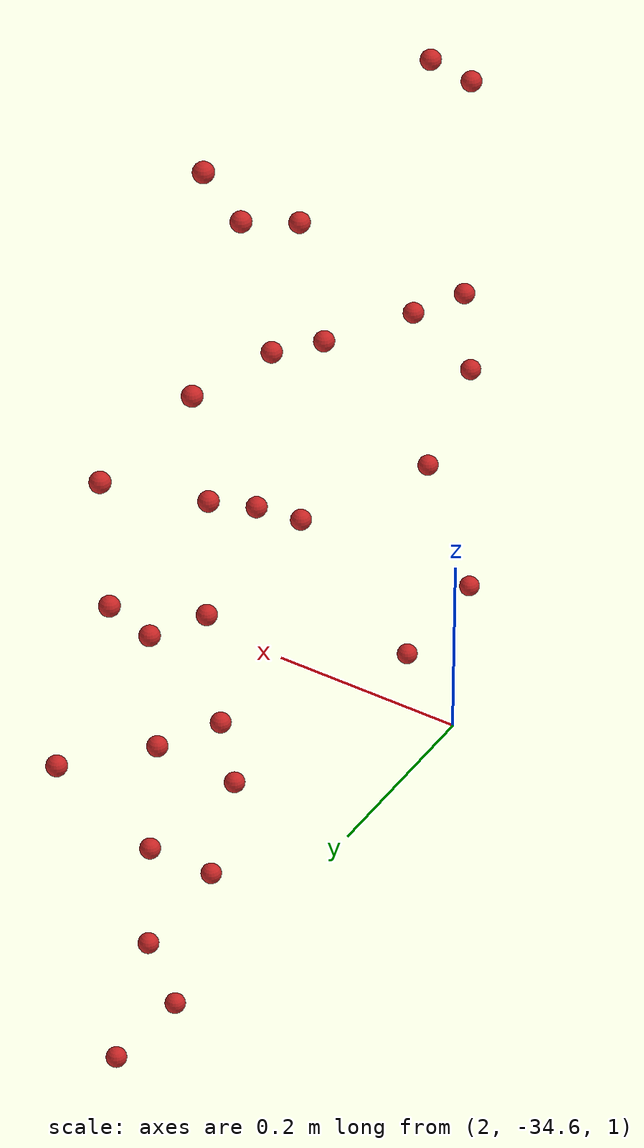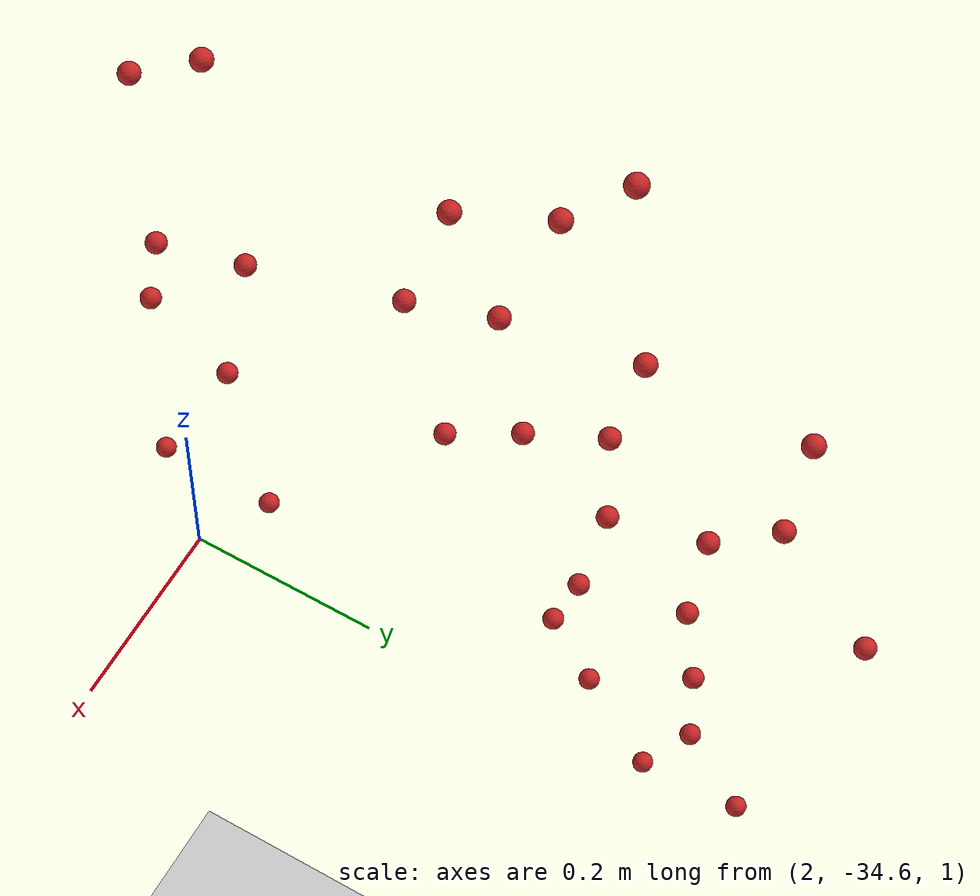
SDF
<sdf version="1.4">
 <world name="default">
  <model name="ground_plane">
   <static>1</static>
   <link name="link">
    <collision name="collision">
     <geometry><plane><normal>0 0 1</normal><size>100 100</size></plane></geometry>
     <surface><friction><ode><mu>100</mu><mu2>50</mu2></ode></friction></surface>
    </collision>
    <visual name="visual">
     <cast_shadows>0</cast_shadows>
     <geometry><plane><normal>0 0 1</normal><size>100 100</size></plane></geometry>
     <material>
      <script><uri>file://media/materials/scripts/gazebo.material</uri><name>Gazebo/Grey</name></script>
     </material>
    </visual>
    <velocity_decay><linear>0</linear><angular>0</angular></velocity_decay>
   </link>
  </model>
  <model name="apple286">
   <link name="my_apple">
    <inertial>
     <pose>2 0 0 0 -0 0</pose>
     <mass>1</mass>
     <inertia><ixx>1</ixx><ixy>0</ixy><ixz>0</ixz><iyy>1</iyy><iyz>0</iyz><izz>1</izz></inertia>
    </inertial>
    <collision name="my_apple_collision">
     <pose>2 0 1 0 -0 0</pose>
     <geometry><sphere><radius>0.01</radius></sphere></geometry>
    </collision>
    <visual name="my_apple_visual">
     <pose>2 0 1 0 -0 0</pose>
     <geometry><sphere><radius>0.01</radius></sphere></geometry>
     <material><script><name>Gazebo/Red</name><uri>__default__</uri></script></material>
    </visual>
    <gravity>0</gravity>
    <velocity_decay><linear>0</linear><angular>0</angular></velocity_decay>
   </link>
   <pose>0 -34.6198 0.429859 0 -0 0</pose>
   <static>0</static>
  </model>
  <model name="apple288">
   <link name="my_apple">
    <inertial>
     <pose>2 0 0 0 -0 0</pose>
     <mass>1</mass>
     <inertia><ixx>1</ixx><ixy>0</ixy><ixz>0</ixz><iyy>1</iyy><iyz>0</iyz><izz>1</izz></inertia>
    </inertial>
    <collision name="my_apple_collision">
     <pose>2 0 1 0 -0 0</pose>
     <geometry><sphere><radius>0.01</radius></sphere></geometry>
    </collision>
    <visual name="my_apple_visual">
     <pose>2 0 1 0 -0 0</pose>
     <geometry><sphere><radius>0.01</radius></sphere></geometry>
     <material><script><name>Gazebo/Red</name><uri>__default__</uri></script></material>
    </visual>
    <gravity>0</gravity>
    <velocity_decay><linear>0</linear><angular>0</angular></velocity_decay>
   </link>
   <pose>0 -34.5343 0.837328 0 -0 0</pose>
   <static>0</static>
  </model>
  <model name="apple289">
   <link name="my_apple">
    <inertial>
     <pose>2 0 0 0 -0 0</pose>
     <mass>1</mass>
     <inertia><ixx>1</ixx><ixy>0</ixy><ixz>0</ixz><iyy>1</iyy><iyz>0</iyz><izz>1</izz></inertia>
    </inertial>
    <collision name="my_apple_collision">
     <pose>2 0 1 0 -0 0</pose>
     <geometry><sphere><radius>0.01</radius></sphere></geometry>
    </collision>
    <visual name="my_apple_visual">
     <pose>2 0 1 0 -0 0</pose>
     <geometry><sphere><radius>0.01</radius></sphere></geometry>
     <material><script><name>Gazebo/Red</name><uri>__default__</uri></script></material>
    </visual>
    <gravity>0</gravity>
    <velocity_decay><linear>0</linear><angular>0</angular></velocity_decay>
   </link>
   <pose>0 -34.5104 0.565683 0 -0 0</pose>
   <static>0</static>
  </model>
  <model name="apple297">
   <link name="my_apple">
    <inertial>
     <pose>2 0 0 0 -0 0</pose>
     <mass>1</mass>
     <inertia><ixx>1</ixx><ixy>0</ixy><ixz>0</ixz><iyy>1</iyy><iyz>0</iyz><izz>1</izz></inertia>
    </inertial>
    <collision name="my_apple_collision">
     <pose>2 0 1 0 -0 0</pose>
     <geometry><sphere><radius>0.01</radius></sphere></geometry>
    </collision>
    <visual name="my_apple_visual">
     <pose>2 0 1 0 -0 0</pose>
     <geometry><sphere><radius>0.01</radius></sphere></geometry>
     <material><script><name>Gazebo/Red</name><uri>__default__</uri></script></material>
    </visual>
    <gravity>0</gravity>
    <velocity_decay><linear>0</linear><angular>0</angular></velocity_decay>
   </link>
   <pose>0 -34.2347 0.517989 0 -0 0</pose>
   <static>0</static>
  </model>
  <model name="apple298">
   <link name="my_apple">
    <inertial>
     <pose>2 0 0 0 -0 0</pose>
     <mass>1</mass>
     <inertia><ixx>1</ixx><ixy>0</ixy><ixz>0</ixz><iyy>1</iyy><iyz>0</iyz><izz>1</izz></inertia>
    </inertial>
    <collision name="my_apple_collision">
     <pose>2 0 1 0 -0 0</pose>
     <geometry><sphere><radius>0.01</radius></sphere></geometry>
    </collision>
    <visual name="my_apple_visual">
     <pose>2 0 1 0 -0 0</pose>
     <geometry><sphere><radius>0.01</radius></sphere></geometry>
     <material><script><name>Gazebo/Red</name><uri>__default__</uri></script></material>
    </visual>
    <gravity>0</gravity>
    <velocity_decay><linear>0</linear><angular>0</angular></velocity_decay>
   </link>
   <pose>0 -34.2607 0.677659 0 -0 0</pose>
   <static>0</static>
  </model>
  <model name="apple299">
   <link name="my_apple">
    <inertial>
     <pose>2 0 0 0 -0 0</pose>
     <mass>1</mass>
     <inertia><ixx>1</ixx><ixy>0</ixy><ixz>0</ixz><iyy>1</iyy><iyz>0</iyz><izz>1</izz></inertia>
    </inertial>
    <collision name="my_apple_collision">
     <pose>2 0 1 0 -0 0</pose>
     <geometry><sphere><radius>0.01</radius></sphere></geometry>
    </collision>
    <visual name="my_apple_visual">
     <pose>2 0 1 0 -0 0</pose>
     <geometry><sphere><radius>0.01</radius></sphere></geometry>
     <material><script><name>Gazebo/Red</name><uri>__default__</uri></script></material>
    </visual>
    <gravity>0</gravity>
    <velocity_decay><linear>0</linear><angular>0</angular></velocity_decay>
   </link>
   <pose>0 -34.2098 0.852881 0 -0 0</pose>
   <static>0</static>
  </model>
  <model name="apple300">
   <link name="my_apple">
    <inertial>
     <pose>2 0 0 0 -0 0</pose>
     <mass>1</mass>
     <inertia><ixx>1</ixx><ixy>0</ixy><ixz>0</ixz><iyy>1</iyy><iyz>0</iyz><izz>1</izz></inertia>
    </inertial>
    <collision name="my_apple_collision">
     <pose>2 0 1 0 -0 0</pose>
     <geometry><sphere><radius>0.01</radius></sphere></geometry>
    </collision>
    <visual name="my_apple_visual">
     <pose>2 0 1 0 -0 0</pose>
     <geometry><sphere><radius>0.01</radius></sphere></geometry>
     <material><script><name>Gazebo/Red</name><uri>__default__</uri></script></material>
    </visual>
    <gravity>0</gravity>
    <velocity_decay><linear>0</linear><angular>0</angular></velocity_decay>
   </link>
   <pose>0 -34.1493 0.942163 0 -0 0</pose>
   <static>0</static>
  </model>
  <model name="apple301">
   <link name="my_apple">
    <inertial>
     <pose>2 0 0 0 -0 0</pose>
     <mass>1</mass>
     <inertia><ixx>1</ixx><ixy>0</ixy><ixz>0</ixz><iyy>1</iyy><iyz>0</iyz><izz>1</izz></inertia>
    </inertial>
    <collision name="my_apple_collision">
     <pose>2 0 1 0 -0 0</pose>
     <geometry><sphere><radius>0.01</radius></sphere></geometry>
    </collision>
    <visual name="my_apple_visual">
     <pose>2 0 1 0 -0 0</pose>
     <geometry><sphere><radius>0.01</radius></sphere></geometry>
     <material><script><name>Gazebo/Red</name><uri>__default__</uri></script></material>
    </visual>
    <gravity>0</gravity>
    <velocity_decay><linear>0</linear><angular>0</angular></velocity_decay>
   </link>
   <pose>0 -34.1716 0.306851 0 -0 0</pose>
   <static>0</static>
  </model>
  <model name="apple302">
   <link name="my_apple">
    <inertial>
     <pose>2 0 0 0 -0 0</pose>
     <mass>1</mass>
     <inertia><ixx>1</ixx><ixy>0</ixy><ixz>0</ixz><iyy>1</iyy><iyz>0</iyz><izz>1</izz></inertia>
    </inertial>
    <collision name="my_apple_collision">
     <pose>2 0 1 0 -0 0</pose>
     <geometry><sphere><radius>0.01</radius></sphere></geometry>
    </collision>
    <visual name="my_apple_visual">
     <pose>2 0 1 0 -0 0</pose>
     <geometry><sphere><radius>0.01</radius></sphere></geometry>
     <material><script><name>Gazebo/Red</name><uri>__default__</uri></script></material>
    </visual>
    <gravity>0</gravity>
    <velocity_decay><linear>0</linear><angular>0</angular></velocity_decay>
   </link>
   <pose>0 -34.195 0.217685 0 -0 0</pose>
   <static>0</static>
  </model>
  <model name="apple303">
   <link name="my_apple">
    <inertial>
     <pose>2 0 0 0 -0 0</pose>
     <mass>1</mass>
     <inertia><ixx>1</ixx><ixy>0</ixy><ixz>0</ixz><iyy>1</iyy><iyz>0</iyz><izz>1</izz></inertia>
    </inertial>
    <collision name="my_apple_collision">
     <pose>2 0 1 0 -0 0</pose>
     <geometry><sphere><radius>0.01</radius></sphere></geometry>
    </collision>
    <visual name="my_apple_visual">
     <pose>2 0 1 0 -0 0</pose>
     <geometry><sphere><radius>0.01</radius></sphere></geometry>
     <material><script><name>Gazebo/Red</name><uri>__default__</uri></script></material>
    </visual>
    <gravity>0</gravity>
    <velocity_decay><linear>0</linear><angular>0</angular></velocity_decay>
   </link>
   <pose>0 -34.1534 0.135611 0 -0 0</pose>
   <static>0</static>
  </model>
  <model name="apple304">
   <link name="my_apple">
    <inertial>
     <pose>2 0 0 0 -0 0</pose>
     <mass>1</mass>
     <inertia><ixx>1</ixx><ixy>0</ixy><ixz>0</ixz><iyy>1</iyy><iyz>0</iyz><izz>1</izz></inertia>
    </inertial>
    <collision name="my_apple_collision">
     <pose>2 0 1 0 -0 0</pose>
     <geometry><sphere><radius>0.01</radius></sphere></geometry>
    </collision>
    <visual name="my_apple_visual">
     <pose>2 0 1 0 -0 0</pose>
     <geometry><sphere><radius>0.01</radius></sphere></geometry>
     <material><script><name>Gazebo/Red</name><uri>__default__</uri></script></material>
    </visual>
    <gravity>0</gravity>
    <velocity_decay><linear>0</linear><angular>0</angular></velocity_decay>
   </link>
   <pose>0 -34.1534 0.578403 0 -0 0</pose>
   <static>0</static>
  </model>
  <model name="apple305">
   <link name="my_apple">
    <inertial>
     <pose>2 0 0 0 -0 0</pose>
     <mass>1</mass>
     <inertia><ixx>1</ixx><ixy>0</ixy><ixz>0</ixz><iyy>1</iyy><iyz>0</iyz><izz>1</izz></inertia>
    </inertial>
    <collision name="my_apple_collision">
     <pose>2 0 1 0 -0 0</pose>
     <geometry><sphere><radius>0.01</radius></sphere></geometry>
    </collision>
    <visual name="my_apple_visual">
     <pose>2 0 1 0 -0 0</pose>
     <geometry><sphere><radius>0.01</radius></sphere></geometry>
     <material><script><name>Gazebo/Red</name><uri>__default__</uri></script></material>
    </visual>
    <gravity>0</gravity>
    <velocity_decay><linear>0</linear><angular>0</angular></velocity_decay>
   </link>
   <pose>0 -34.128 0.713166 0 -0 0</pose>
   <static>0</static>
  </model>
  <model name="apple307">
   <link name="my_apple">
    <inertial>
     <pose>2 0 0 0 -0 0</pose>
     <mass>1</mass>
     <inertia><ixx>1</ixx><ixy>0</ixy><ixz>0</ixz><iyy>1</iyy><iyz>0</iyz><izz>1</izz></inertia>
    </inertial>
    <collision name="my_apple_collision">
     <pose>2 0 1 0 -0 0</pose>
     <geometry><sphere><radius>0.01</radius></sphere></geometry>
    </collision>
    <visual name="my_apple_visual">
     <pose>2 0 1 0 -0 0</pose>
     <geometry><sphere><radius>0.01</radius></sphere></geometry>
     <material><script><name>Gazebo/Red</name><uri>__default__</uri></script></material>
    </visual>
    <gravity>0</gravity>
    <velocity_decay><linear>0</linear><angular>0</angular></velocity_decay>
   </link>
   <pose>0 -34.0498 0.242411 0 -0 0</pose>
   <static>0</static>
  </model>
  <model name="apple308">
   <link name="my_apple">
    <inertial>
     <pose>2 0 0 0 -0 0</pose>
     <mass>1</mass>
     <inertia><ixx>1</ixx><ixy>0</ixy><ixz>0</ixz><iyy>1</iyy><iyz>0</iyz><izz>1</izz></inertia>
    </inertial>
    <collision name="my_apple_collision">
     <pose>2 0 1 0 -0 0</pose>
     <geometry><sphere><radius>0.01</radius></sphere></geometry>
    </collision>
    <visual name="my_apple_visual">
     <pose>2 0 1 0 -0 0</pose>
     <geometry><sphere><radius>0.01</radius></sphere></geometry>
     <material><script><name>Gazebo/Red</name><uri>__default__</uri></script></material>
    </visual>
    <gravity>0</gravity>
    <velocity_decay><linear>0</linear><angular>0</angular></velocity_decay>
   </link>
   <pose>0 -34.0541 0.491305 0 -0 0</pose>
   <static>0</static>
  </model>
  <model name="apple309">
   <link name="my_apple">
    <inertial>
     <pose>2 0 0 0 -0 0</pose>
     <mass>1</mass>
     <inertia><ixx>1</ixx><ixy>0</ixy><ixz>0</ixz><iyy>1</iyy><iyz>0</iyz><izz>1</izz></inertia>
    </inertial>
    <collision name="my_apple_collision">
     <pose>2 0 1 0 -0 0</pose>
     <geometry><sphere><radius>0.01</radius></sphere></geometry>
    </collision>
    <visual name="my_apple_visual">
     <pose>2 0 1 0 -0 0</pose>
     <geometry><sphere><radius>0.01</radius></sphere></geometry>
     <material><script><name>Gazebo/Red</name><uri>__default__</uri></script></material>
    </visual>
    <gravity>0</gravity>
    <velocity_decay><linear>0</linear><angular>0</angular></velocity_decay>
   </link>
   <pose>0 -34.6049 0.529294 0 -0 0</pose>
   <static>0</static>
  </model>
  <model name="apple310">
   <link name="my_apple">
    <inertial>
     <pose>2 0 0 0 -0 0</pose>
     <mass>1</mass>
     <inertia><ixx>1</ixx><ixy>0</ixy><ixz>0</ixz><iyy>1</iyy><iyz>0</iyz><izz>1</izz></inertia>
    </inertial>
    <collision name="my_apple_collision">
     <pose>2 0 1 0 -0 0</pose>
     <geometry><sphere><radius>0.01</radius></sphere></geometry>
    </collision>
    <visual name="my_apple_visual">
     <pose>2 0 1 0 -0 0</pose>
     <geometry><sphere><radius>0.01</radius></sphere></geometry>
     <material><script><name>Gazebo/Red</name><uri>__default__</uri></script></material>
    </visual>
    <gravity>0</gravity>
    <velocity_decay><linear>0</linear><angular>0</angular></velocity_decay>
   </link>
   <pose>0 -34.3078 0.79251 0 -0 0</pose>
   <static>0</static>
  </model>
  <model name="apple311">
   <link name="my_apple">
    <inertial>
     <pose>2 0 0 0 -0 0</pose>
     <mass>1</mass>
     <inertia><ixx>1</ixx><ixy>0</ixy><ixz>0</ixz><iyy>1</iyy><iyz>0</iyz><izz>1</izz></inertia>
    </inertial>
    <collision name="my_apple_collision">
     <pose>2 0 1 0 -0 0</pose>
     <geometry><sphere><radius>0.01</radius></sphere></geometry>
    </collision>
    <visual name="my_apple_visual">
     <pose>2 0 1 0 -0 0</pose>
     <geometry><sphere><radius>0.01</radius></sphere></geometry>
     <material><script><name>Gazebo/Red</name><uri>__default__</uri></script></material>
    </visual>
    <gravity>0</gravity>
    <velocity_decay><linear>0</linear><angular>0</angular></velocity_decay>
   </link>
   <pose>0 -34.0642 0.354771 0 -0 0</pose>
   <static>0</static>
  </model>
  <model name="apple312">
   <link name="my_apple">
    <inertial>
     <pose>2 0 0 0 -0 0</pose>
     <mass>1</mass>
     <inertia><ixx>1</ixx><ixy>0</ixy><ixz>0</ixz><iyy>1</iyy><iyz>0</iyz><izz>1</izz></inertia>
    </inertial>
    <collision name="my_apple_collision">
     <pose>2 0 1 0 -0 0</pose>
     <geometry><sphere><radius>0.01</radius></sphere></geometry>
    </collision>
    <visual name="my_apple_visual">
     <pose>2 0 1 0 -0 0</pose>
     <geometry><sphere><radius>0.01</radius></sphere></geometry>
     <material><script><name>Gazebo/Red</name><uri>__default__</uri></script></material>
    </visual>
    <gravity>0</gravity>
    <velocity_decay><linear>0</linear><angular>0</angular></velocity_decay>
   </link>
   <pose>0 -34.3508 0.633246 0 -0 0</pose>
   <static>0</static>
  </model>
  <model name="apple315">
   <link name="my_apple">
    <inertial>
     <pose>2 0 0 0 -0 0</pose>
     <mass>1</mass>
     <inertia><ixx>1</ixx><ixy>0</ixy><ixz>0</ixz><iyy>1</iyy><iyz>0</iyz><izz>1</izz></inertia>
    </inertial>
    <collision name="my_apple_collision">
     <pose>2 0 1 0 -0 0</pose>
     <geometry><sphere><radius>0.01</radius></sphere></geometry>
    </collision>
    <visual name="my_apple_visual">
     <pose>2 0 1 0 -0 0</pose>
     <geometry><sphere><radius>0.01</radius></sphere></geometry>
     <material><script><name>Gazebo/Red</name><uri>__default__</uri></script></material>
    </visual>
    <gravity>0</gravity>
    <velocity_decay><linear>0</linear><angular>0</angular></velocity_decay>
   </link>
   <pose>0 -33.9875 0.031328 0 -0 0</pose>
   <static>0</static>
  </model>
  <model name="apple316">
   <link name="my_apple">
    <inertial>
     <pose>2 0 0 0 -0 0</pose>
     <mass>1</mass>
     <inertia><ixx>1</ixx><ixy>0</ixy><ixz>0</ixz><iyy>1</iyy><iyz>0</iyz><izz>1</izz></inertia>
    </inertial>
    <collision name="my_apple_collision">
     <pose>2 0 1 0 -0 0</pose>
     <geometry><sphere><radius>0.01</radius></sphere></geometry>
    </collision>
    <visual name="my_apple_visual">
     <pose>2 0 1 0 -0 0</pose>
     <geometry><sphere><radius>0.01</radius></sphere></geometry>
     <material><script><name>Gazebo/Red</name><uri>__default__</uri></script></material>
    </visual>
    <gravity>0</gravity>
    <velocity_decay><linear>0</linear><angular>0</angular></velocity_decay>
   </link>
   <pose>0 -34.0446 0.130186 0 -0 0</pose>
   <static>0</static>
  </model>
  <model name="apple317">
   <link name="my_apple">
    <inertial>
     <pose>2 0 0 0 -0 0</pose>
     <mass>1</mass>
     <inertia><ixx>1</ixx><ixy>0</ixy><ixz>0</ixz><iyy>1</iyy><iyz>0</iyz><izz>1</izz></inertia>
    </inertial>
    <collision name="my_apple_collision">
     <pose>2 0 1 0 -0 0</pose>
     <geometry><sphere><radius>0.01</radius></sphere></geometry>
    </collision>
    <visual name="my_apple_visual">
     <pose>2 0 1 0 -0 0</pose>
     <geometry><sphere><radius>0.01</radius></sphere></geometry>
     <material><script><name>Gazebo/Red</name><uri>__default__</uri></script></material>
    </visual>
    <gravity>0</gravity>
    <velocity_decay><linear>0</linear><angular>0</angular></velocity_decay>
   </link>
   <pose>0 -34.1492 0.450164 0 -0 0</pose>
   <static>0</static>
  </model>
  <model name="apple319">
   <link name="my_apple">
    <inertial>
     <pose>2 0 0 0 -0 0</pose>
     <mass>1</mass>
     <inertia><ixx>1</ixx><ixy>0</ixy><ixz>0</ixz><iyy>1</iyy><iyz>0</iyz><izz>1</izz></inertia>
    </inertial>
    <collision name="my_apple_collision">
     <pose>2 0 1 0 -0 0</pose>
     <geometry><sphere><radius>0.01</radius></sphere></geometry>
    </collision>
    <visual name="my_apple_visual">
     <pose>2 0 1 0 -0 0</pose>
     <geometry><sphere><radius>0.01</radius></sphere></geometry>
     <material><script><name>Gazebo/Red</name><uri>__default__</uri></script></material>
    </visual>
    <gravity>0</gravity>
    <velocity_decay><linear>0</linear><angular>0</angular></velocity_decay>
   </link>
   <pose>0 -33.9791 0.714817 0 -0 0</pose>
   <static>0</static>
  </model>
  <model name="apple324">
   <link name="my_apple">
    <inertial>
     <pose>2 0 0 0 -0 0</pose>
     <mass>1</mass>
     <inertia><ixx>1</ixx><ixy>0</ixy><ixz>0</ixz><iyy>1</iyy><iyz>0</iyz><izz>1</izz></inertia>
    </inertial>
    <collision name="my_apple_collision">
     <pose>2 0 1 0 -0 0</pose>
     <geometry><sphere><radius>0.01</radius></sphere></geometry>
    </collision>
    <visual name="my_apple_visual">
     <pose>2 0 1 0 -0 0</pose>
     <geometry><sphere><radius>0.01</radius></sphere></geometry>
     <material><script><name>Gazebo/Red</name><uri>__default__</uri></script></material>
    </visual>
    <gravity>0</gravity>
    <velocity_decay><linear>0</linear><angular>0</angular></velocity_decay>
   </link>
   <pose>0 -34.3116 0.452235 0 -0 0</pose>
   <static>0</static>
  </model>
  <model name="apple326">
   <link name="my_apple">
    <inertial>
     <pose>2 0 0 0 -0 0</pose>
     <mass>1</mass>
     <inertia><ixx>1</ixx><ixy>0</ixy><ixz>0</ixz><iyy>1</iyy><iyz>0</iyz><izz>1</izz></inertia>
    </inertial>
    <collision name="my_apple_collision">
     <pose>2 0 1 0 -0 0</pose>
     <geometry><sphere><radius>0.01</radius></sphere></geometry>
    </collision>
    <visual name="my_apple_visual">
     <pose>2 0 1 0 -0 0</pose>
     <geometry><sphere><radius>0.01</radius></sphere></geometry>
     <material><script><name>Gazebo/Red</name><uri>__default__</uri></script></material>
    </visual>
    <gravity>0</gravity>
    <velocity_decay><linear>0</linear><angular>0</angular></velocity_decay>
   </link>
   <pose>0 -34.6267 0.159893 0 -0 0</pose>
   <static>0</static>
  </model>
  <model name="apple331">
   <link name="my_apple">
    <inertial>
     <pose>2 0 0 0 -0 0</pose>
     <mass>1</mass>
     <inertia><ixx>1</ixx><ixy>0</ixy><ixz>0</ixz><iyy>1</iyy><iyz>0</iyz><izz>1</izz></inertia>
    </inertial>
    <collision name="my_apple_collision">
     <pose>2 0 1 0 -0 0</pose>
     <geometry><sphere><radius>0.01</radius></sphere></geometry>
    </collision>
    <visual name="my_apple_visual">
     <pose>2 0 1 0 -0 0</pose>
     <geometry><sphere><radius>0.01</radius></sphere></geometry>
     <material><script><name>Gazebo/Red</name><uri>__default__</uri></script></material>
    </visual>
    <gravity>0</gravity>
    <velocity_decay><linear>0</linear><angular>0</angular></velocity_decay>
   </link>
   <pose>0 -34.6093 0.769811 0 -0 0</pose>
   <static>0</static>
  </model>
  <model name="apple338">
   <link name="my_apple">
    <inertial>
     <pose>2 0 0 0 -0 0</pose>
     <mass>1</mass>
     <inertia><ixx>1</ixx><ixy>0</ixy><ixz>0</ixz><iyy>1</iyy><iyz>0</iyz><izz>1</izz></inertia>
    </inertial>
    <collision name="my_apple_collision">
     <pose>2 0 1 0 -0 0</pose>
     <geometry><sphere><radius>0.01</radius></sphere></geometry>
    </collision>
    <visual name="my_apple_visual">
     <pose>2 0 1 0 -0 0</pose>
     <geometry><sphere><radius>0.01</radius></sphere></geometry>
     <material><script><name>Gazebo/Red</name><uri>__default__</uri></script></material>
    </visual>
    <gravity>0</gravity>
    <velocity_decay><linear>0</linear><angular>0</angular></velocity_decay>
   </link>
   <pose>0 -34.5423 0.365028 0 -0 0</pose>
   <static>0</static>
  </model>
  <model name="apple340">
   <link name="my_apple">
    <inertial>
     <pose>2 0 0 0 -0 0</pose>
     <mass>1</mass>
     <inertia><ixx>1</ixx><ixy>0</ixy><ixz>0</ixz><iyy>1</iyy><iyz>0</iyz><izz>1</izz></inertia>
    </inertial>
    <collision name="my_apple_collision">
     <pose>2 0 1 0 -0 0</pose>
     <geometry><sphere><radius>0.01</radius></sphere></geometry>
    </collision>
    <visual name="my_apple_visual">
     <pose>2 0 1 0 -0 0</pose>
     <geometry><sphere><radius>0.01</radius></sphere></geometry>
     <material><script><name>Gazebo/Red</name><uri>__default__</uri></script></material>
    </visual>
    <gravity>0</gravity>
    <velocity_decay><linear>0</linear><angular>0</angular></velocity_decay>
   </link>
   <pose>0 -34.5087 0.15553 0 -0 0</pose>
   <static>0</static>
  </model>
  <model name="apple348">
   <link name="my_apple">
    <inertial>
     <pose>2 0 0 0 -0 0</pose>
     <mass>1</mass>
     <inertia><ixx>1</ixx><ixy>0</ixy><ixz>0</ixz><iyy>1</iyy><iyz>0</iyz><izz>1</izz></inertia>
    </inertial>
    <collision name="my_apple_collision">
     <pose>2 0 1 0 -0 0</pose>
     <geometry><sphere><radius>0.01</radius></sphere></geometry>
    </collision>
    <visual name="my_apple_visual">
     <pose>2 0 1 0 -0 0</pose>
     <geometry><sphere><radius>0.01</radius></sphere></geometry>
     <material><script><name>Gazebo/Red</name><uri>__default__</uri></script></material>
    </visual>
    <gravity>0</gravity>
    <velocity_decay><linear>0</linear><angular>0</angular></velocity_decay>
   </link>
   <pose>0 -34.0888 0.021163 0 -0 0</pose>
   <static>0</static>
  </model>
  <model name="apple359">
   <link name="my_apple">
    <inertial>
     <pose>2 0 0 0 -0 0</pose>
     <mass>1</mass>
     <inertia><ixx>1</ixx><ixy>0</ixy><ixz>0</ixz><iyy>1</iyy><iyz>0</iyz><izz>1</izz></inertia>
    </inertial>
    <collision name="my_apple_collision">
     <pose>2 0 1 0 -0 0</pose>
     <geometry><sphere><radius>0.01</radius></sphere></geometry>
    </collision>
    <visual name="my_apple_visual">
     <pose>2 0 1 0 -0 0</pose>
     <geometry><sphere><radius>0.01</radius></sphere></geometry>
     <material><script><name>Gazebo/Red</name><uri>__default__</uri></script></material>
    </visual>
    <gravity>0</gravity>
    <velocity_decay><linear>0</linear><angular>0</angular></velocity_decay>
   </link>
   <pose>0 -33.9012 0.448135 0 -0 0</pose>
   <static>0</static>
  </model>
  <model name="apple360">
   <link name="my_apple">
    <inertial>
     <pose>2 0 0 0 -0 0</pose>
     <mass>1</mass>
     <inertia><ixx>1</ixx><ixy>0</ixy><ixz>0</ixz><iyy>1</iyy><iyz>0</iyz><izz>1</izz></inertia>
    </inertial>
    <collision name="my_apple_collision">
     <pose>2 0 1 0 -0 0</pose>
     <geometry><sphere><radius>0.01</radius></sphere></geometry>
    </collision>
    <visual name="my_apple_visual">
     <pose>2 0 1 0 -0 0</pose>
     <geometry><sphere><radius>0.01</radius></sphere></geometry>
     <material><script><name>Gazebo/Red</name><uri>__default__</uri></script></material>
    </visual>
    <gravity>0</gravity>
    <velocity_decay><linear>0</linear><angular>0</angular></velocity_decay>
   </link>
   <pose>0 -33.9902 0.569022 0 -0 0</pose>
   <static>0</static>
  </model>
 </world>
</sdf>
